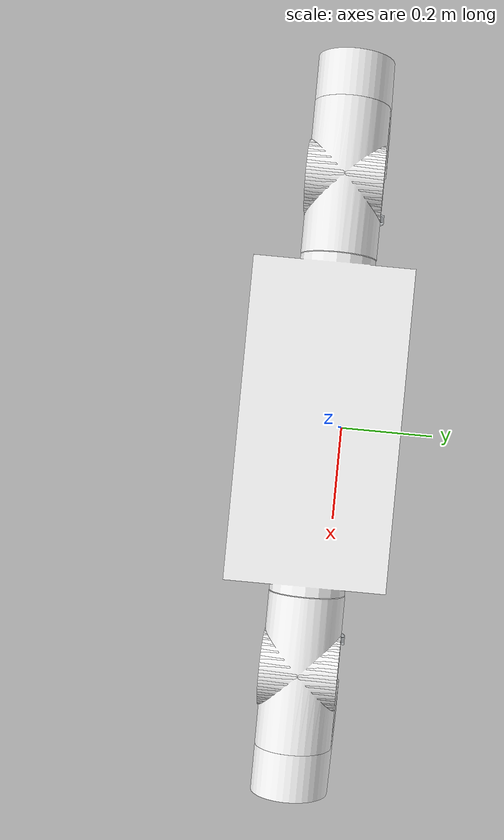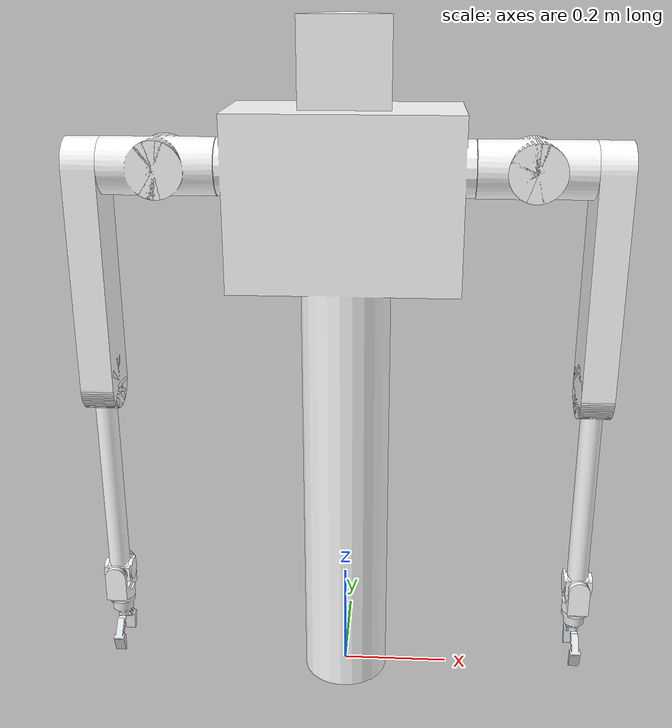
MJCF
<!-- Author: Z.Li, H. Zhou -->
<!-- Date 2023-06-20 -->

<mujoco model="arm_imi_urdf">
  <compiler angle="radian" meshdir="/home/leeezd/tmp/arm_imi/meshes/" autolimits="true"/>
  <default/>
  <asset>
     <mesh name="base_link_body" file="meshes/base_link_body.STL"/>
    <mesh name="link1" file="meshes/imi_link1.STL"/>
    <mesh name="link2" file="meshes/imi_link2.STL"/>
    <mesh name="link3" file="meshes/imi_link3.STL"/>
    <mesh name="link4" file="meshes/imi_link4.STL"/>
    <mesh name="link5" file="meshes/imi_link5.STL"/>
    <mesh name="link6" file="meshes/imi_link6.STL"/>
    <mesh name="link7" file="meshes/imi_link7.STL"/>
  </asset>
  <worldbody>
    <body name="robot_body" pos="0.0 0 0.99">
      <geom type="mesh" contype="0" conaffinity="0" group="1" density="0" rgba="1 1 1 1" mesh="base_link_body"/>
      <body name="left_link1" pos="-0.321 0 0.0" quat="0.707095 0.00 -0.707095 -0.00" gravcomp="0"  >
        <inertial pos="-3.785e-07 3.1699e-08 -0.025784" quat="1 0 0 -7.43287e-06" mass="1.2375" diaginertia="0.0029871 0.0028791 0.0017382"/>
        <joint name="left_j1" pos="0 0 0" axis="0 0 1" limited="true" range="-3.1415 3.1415"/>
        <geom type="mesh" contype="0" conaffinity="0" group="1" density="0" rgba="1 1 1 1" mesh="link1"/>
        <geom type="mesh" rgba="1 0.0 1 1" mesh="link1"/>
        <body name="left_link2" pos="0 0 0" quat="0.707105 0.707108 0 0" gravcomp="0">
          <inertial pos="3.78497e-07 0.025784 -3.16989e-08" quat="0.707107 0.707107 5.25436e-06 -5.25436e-06" mass="1.23747" diaginertia="0.00298709 0.00287905 0.00173824"/>
          <joint name="left_j2" pos="0 0 0" axis="0 0 -1" limited="true" range="-1.57 1.57"/>
          <geom type="mesh" contype="0" conaffinity="0" group="1" density="0" rgba="1 1 1 1" mesh="link2"/>
          <geom type="mesh" rgba="1 1 1 1" mesh="link2"/>
          <body name="left_link3" pos="0 0.13 0" quat="-2.59734e-06 -2.59735e-06 0.707108 0.707105" gravcomp="0">
            <inertial pos="0.2 0 0" quat="0 0.707107 0 0.707107" mass="2.8712" diaginertia="0.057439 0.056005 0.0031559"/>
            <joint name="left_j3" pos="0 0 0" axis="0 0 1"/>
            <geom type="mesh" contype="0" conaffinity="0" group="1" density="0" rgba="1 1 1 1" mesh="link3"/>
            <geom type="mesh" rgba="1 1 1 1" mesh="link3"/>
            <body name="left_link4" pos="0.4 0 0" gravcomp="0">
              <inertial pos="0.1177 4.5948e-07 -2.5419e-08" quat="5.83433e-06 0.707107 5.83433e-06 0.707107" mass="0.94127" diaginertia="0.019139 0.018987 0.00053195"/>
              <joint name="left_j4" pos="0 0 0" axis="0 0 -1" limited="true" range="-2.1415 2.1415"/>
              <geom type="mesh" contype="0" conaffinity="0" group="1" density="0" rgba="1 1 1 1" mesh="link4"/>
              <geom type="mesh" rgba="1 1 1 1" mesh="link4"/>
              <body name="left_link5" pos="0.4 0 0" gravcomp="0">
                <inertial pos="0 0 0" quat="0.707107 0.707107 0 0" mass="0.046406" diaginertia="3.4126e-05 2.3636e-05 1.9116e-05"/>
                <joint name="left_j5" pos="0 0 0" axis="0 0 1" limited="true" range="-0.25 0.25"/>
                <geom type="mesh" contype="0" conaffinity="0" group="1" density="0" rgba="1 1 1 1" mesh="link5"/>
                <geom type="mesh" rgba="1 1 1 1" mesh="link5"/>
                <body name="left_link6" pos="0 0 0" quat="0.5 0.500002 0.499998 -0.5" gravcomp="0">
                  <inertial pos="0 0.0326 0" mass="0.12225" diaginertia="0.00012918 9.9446e-05 6.3838e-05"/>
                  <joint name="left_j6" pos="0 0 0" axis="0 0 -1" limited="true" range="-1.85 1.85"/>
                  <geom type="mesh" contype="0" conaffinity="0" group="1" density="0" rgba="1 1 1 1" mesh="link6"/>
                  <geom type="mesh" rgba="1 1 1 1" mesh="link6"/>
                  <body name="left_link7" pos="0 0.06 0" quat="-2.59734e-06 -2.59735e-06 -0.707108 -0.707105" gravcomp="0">
                    <inertial pos="-0.00065795 -6.8623e-07 0.035542" quat="0.493193 0.492405 -0.507516 0.506681" mass="0.081104" diaginertia="1.46283e-05 1.17757e-05 1.1517e-05"/>
                    <joint name="left_j7" pos="0 0 0" axis="0 0 1"/>
                    <geom type="mesh" contype="0" conaffinity="0" group="1" density="0" rgba="0.89804 0.91765 0.92941 1" mesh="link7"/>
                    <geom type="mesh" rgba="0.89804 0.91765 0.92941 1" mesh="link7"/>
                  </body>
                </body>
              </body>
            </body>
          </body>
        </body>
      </body>
      <body name="right_link1" pos="0.321 0 0.0" quat="0.000 0.707095 0.00 0.707095" gravcomp="0"  >
        <inertial pos="-3.785e-07 3.1699e-08 -0.025784" quat="1 0 0 -7.43287e-06" mass="1.2375" diaginertia="0.0029871 0.0028791 0.0017382"/>
        <joint name="right_j1" pos="0 0 0" axis="0 0 1" limited="true" range="-3.1415 3.1415"/>
        <geom type="mesh" contype="0" conaffinity="0" group="1" density="0" rgba="1 1 1 1" mesh="link1"/>
        <geom type="mesh" rgba="1 1 1 1" mesh="link1"/>
        <body name="right_link2" pos="0 0 0" quat="0.707105 0.707108 0 0" gravcomp="0">
          <inertial pos="3.78497e-07 0.025784 -3.16989e-08" quat="0.707107 0.707107 5.25436e-06 -5.25436e-06" mass="1.23747" diaginertia="0.00298709 0.00287905 0.00173824"/>
          <joint name="right_j2" pos="0 0 0" axis="0 0 -1" limited="true" range="-1.57 1.57"/>
          <geom type="mesh" contype="0" conaffinity="0" group="1" density="0" rgba="1 1 1 1" mesh="link2"/>
          <geom type="mesh" rgba="1 1 1 1" mesh="link2"/>
          <body name="right_link3" pos="0 0.13 0" quat="-2.59734e-06 -2.59735e-06 0.707108 0.707105" gravcomp="0">
            <inertial pos="0.2 0 0" quat="0 0.707107 0 0.707107" mass="2.8712" diaginertia="0.057439 0.056005 0.0031559"/>
            <joint name="right_j3" pos="0 0 0" axis="0 0 1"/>
            <geom type="mesh" contype="0" conaffinity="0" group="1" density="0" rgba="1 1 1 1" mesh="link3"/>
            <geom type="mesh" rgba="1 1 1 1" mesh="link3"/>
            <body name="right_link4" pos="0.4 0 0" gravcomp="0">
              <inertial pos="0.1177 4.5948e-07 -2.5419e-08" quat="5.83433e-06 0.707107 5.83433e-06 0.707107" mass="0.94127" diaginertia="0.019139 0.018987 0.00053195"/>
              <joint name="right_j4" pos="0 0 0" axis="0 0 -1" limited="true" range="-2.1415 2.1415"/>
              <geom type="mesh" contype="0" conaffinity="0" group="1" density="0" rgba="1 1 1 1" mesh="link4"/>
              <geom type="mesh" rgba="1 1 1 1" mesh="link4"/>
              <body name="right_link5" pos="0.4 0 0" gravcomp="0">
                <inertial pos="0 0 0" quat="0.707107 0.707107 0 0" mass="0.046406" diaginertia="3.4126e-05 2.3636e-05 1.9116e-05"/>
                <joint name="right_j5" pos="0 0 0" axis="0 0 1" limited="true" range="-0.25 0.25"/>
                <geom type="mesh" contype="0" conaffinity="0" group="1" density="0" rgba="1 1 1 1" mesh="link5"/>
                <geom type="mesh" rgba="1 1 1 1" mesh="link5"/>
                <body name="right_link6" pos="0 0 0" quat="0.5 0.500002 0.499998 -0.5" gravcomp="0">
                  <inertial pos="0 0.0326 0" mass="0.12225" diaginertia="0.00012918 9.9446e-05 6.3838e-05"/>
                  <joint name="right_j6" pos="0 0 0" axis="0 0 -1" limited="true" range="-1.85 1.85"/>
                  <geom type="mesh" contype="0" conaffinity="0" group="1" density="0" rgba="1 1 1 1" mesh="link6"/>
                  <geom type="mesh" rgba="1 1 1 1" mesh="link6"/>
                  <body name="right_link7" pos="0 0.06 0" quat="-2.59734e-06 -2.59735e-06 -0.707108 -0.707105" gravcomp="0">
                    <inertial pos="-0.00065795 -6.8623e-07 0.035542" quat="0.493193 0.492405 -0.507516 0.506681" mass="0.081104" diaginertia="1.46283e-05 1.17757e-05 1.1517e-05"/>
                    <joint name="right_j7" pos="0 0 0" axis="0 0 1"/>
                    <geom type="mesh" contype="0" conaffinity="0" group="1" density="0" rgba="0.89804 0.91765 0.92941 1" mesh="link7"/>
                    <geom type="mesh" rgba="0.89804 0.91765 0.92941 1" mesh="link7"/>
                  </body>
                </body>
              </body>
            </body>
          </body>
        </body>
      </body>
    </body>
  </worldbody>
  <actuator>
      <motor name="left_m1" ctrllimited="true" ctrlrange="-100.0 100.0"  joint="left_j1"/>
      <motor name="left_m2" ctrllimited="true" ctrlrange="-100.0 100.0"  joint="left_j2"/>
      <motor name="left_m3" ctrllimited="true" ctrlrange="-100.0 100.0"  joint="left_j3"/>
      <motor name="left_m4" ctrllimited="true" ctrlrange="-100.0 100.0"  joint="left_j4"/>
      <motor name="left_m5" ctrllimited="true" ctrlrange="-100.0 100.0"  joint="left_j5"/>
      <motor name="left_m6" ctrllimited="true" ctrlrange="-100.0 100.0"  joint="left_j6"/>
      <motor name="left_m7" ctrllimited="true" ctrlrange="-100.0 100.0"  joint="left_j7"/>
      <motor name="right_m1" ctrllimited="true" ctrlrange="-100.0 100.0"  joint="right_j1"/>
      <motor name="right_m2" ctrllimited="true" ctrlrange="-100.0 100.0"  joint="right_j2"/>
      <motor name="right_m3" ctrllimited="true" ctrlrange="-100.0 100.0"  joint="right_j3"/>
      <motor name="right_m4" ctrllimited="true" ctrlrange="-100.0 100.0"  joint="right_j4"/>
      <motor name="right_m5" ctrllimited="true" ctrlrange="-100.0 100.0"  joint="right_j5"/>
      <motor name="right_m6" ctrllimited="true" ctrlrange="-100.0 100.0"  joint="right_j6"/>
      <motor name="right_m7" ctrllimited="true" ctrlrange="-100.0 100.0"  joint="right_j7"/>
  </actuator>
</mujoco>
